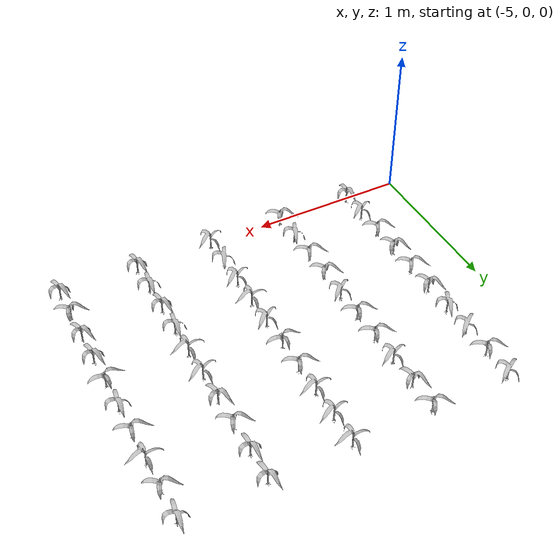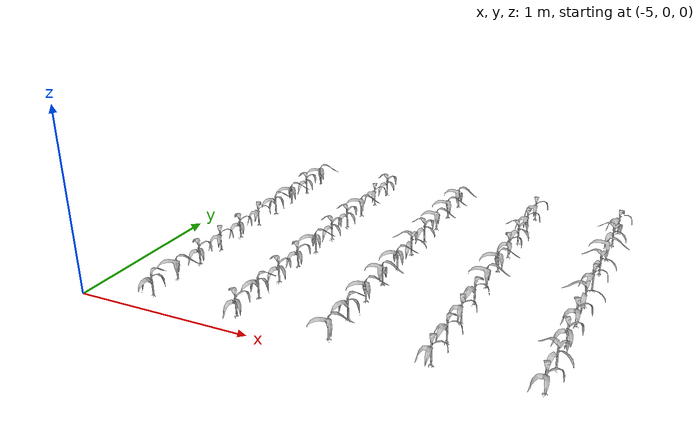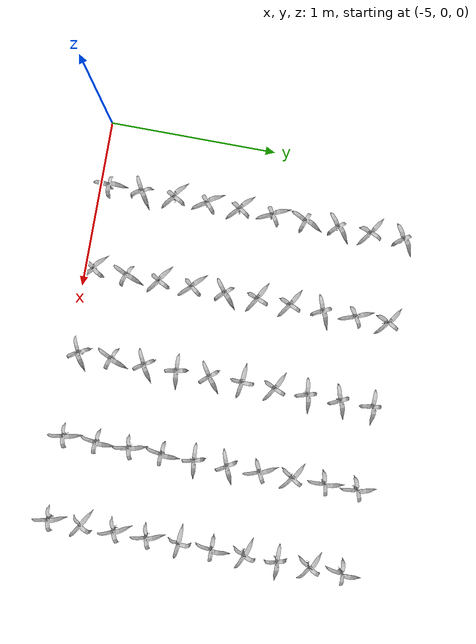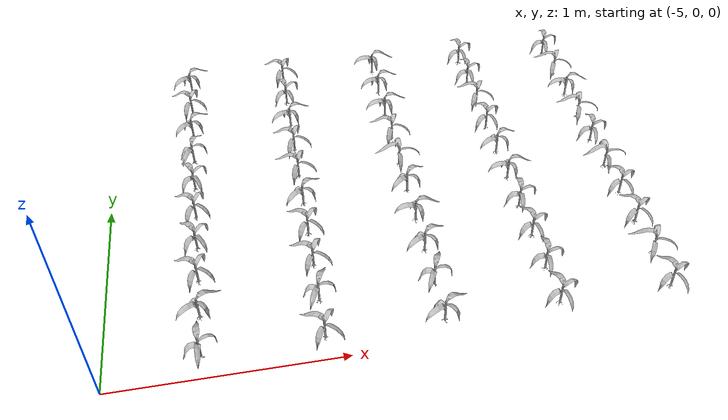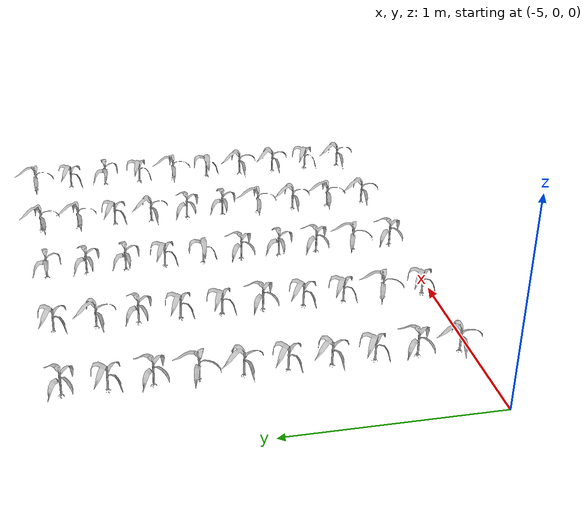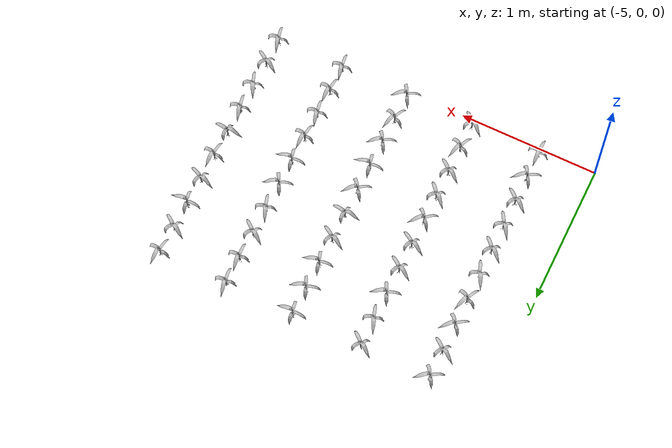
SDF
<sdf version="1.7">
 <world name="default">
  <model name="maize_-4.6_0.07500000000000018">
   <static>1</static>
   <link name="link">
    <inertial>
     <mass>0.2</mass>
     <inertia>
      <ixx>0.166667</ixx>
      <ixy>0</ixy>
      <ixz>0</ixz>
      <iyy>0.166667</iyy>
      <iyz>0</iyz>
      <izz>0.166667</izz>
     </inertia>
    </inertial>
    <collision name="collision">
     <geometry><mesh><uri>model://corn_3/meshes/corn.dae</uri><scale>0.25 0.25 0.25</scale></mesh></geometry>
     <surface>
      <friction><ode><mu>0</mu><mu2>0</mu2></ode></friction>
      <contact><ode><kp>0</kp><kd>0</kd><max_vel>0</max_vel><min_depth>0.002</min_depth></ode></contact>
     </surface>
    </collision>
    <visual name="visual">
     <geometry><mesh><uri>model://corn_3/meshes/corn.dae</uri><scale>0.25 0.25 0.25</scale></mesh></geometry>
    </visual>
    <velocity_decay><linear>0</linear><angular>0</angular></velocity_decay>
   </link>
   <pose>-4.6 0.075 0.05 0 -0 1.63454</pose>
  </model>
  <model name="maize_-4.6_0.27000000000000046">
   <static>1</static>
   <link name="link">
    <inertial>
     <mass>0.2</mass>
     <inertia>
      <ixx>0.166667</ixx>
      <ixy>0</ixy>
      <ixz>0</ixz>
      <iyy>0.166667</iyy>
      <iyz>0</iyz>
      <izz>0.166667</izz>
     </inertia>
    </inertial>
    <collision name="collision">
     <geometry><mesh><uri>model://corn_3/meshes/corn.dae</uri><scale>0.25 0.25 0.25</scale></mesh></geometry>
     <surface>
      <friction><ode><mu>0</mu><mu2>0</mu2></ode></friction>
      <contact><ode><kp>0</kp><kd>0</kd><max_vel>0</max_vel><min_depth>0.002</min_depth></ode></contact>
     </surface>
    </collision>
    <visual name="visual">
     <geometry><mesh><uri>model://corn_3/meshes/corn.dae</uri><scale>0.25 0.25 0.25</scale></mesh></geometry>
    </visual>
    <velocity_decay><linear>0</linear><angular>0</angular></velocity_decay>
   </link>
   <pose>-4.6 0.27 0.05 0 -0 0.584433</pose>
  </model>
  <model name="maize_-4.6_0.46500000000000075">
   <static>1</static>
   <link name="link">
    <inertial>
     <mass>0.2</mass>
     <inertia>
      <ixx>0.166667</ixx>
      <ixy>0</ixy>
      <ixz>0</ixz>
      <iyy>0.166667</iyy>
      <iyz>0</iyz>
      <izz>0.166667</izz>
     </inertia>
    </inertial>
    <collision name="collision">
     <geometry><mesh><uri>model://corn_3/meshes/corn.dae</uri><scale>0.25 0.25 0.25</scale></mesh></geometry>
     <surface>
      <friction><ode><mu>0</mu><mu2>0</mu2></ode></friction>
      <contact><ode><kp>0</kp><kd>0</kd><max_vel>0</max_vel><min_depth>0.002</min_depth></ode></contact>
     </surface>
    </collision>
    <visual name="visual">
     <geometry><mesh><uri>model://corn_3/meshes/corn.dae</uri><scale>0.25 0.25 0.25</scale></mesh></geometry>
    </visual>
    <velocity_decay><linear>0</linear><angular>0</angular></velocity_decay>
   </link>
   <pose>-4.6 0.465 0.05 0 -0 2.54155</pose>
  </model>
  <model name="maize_-4.6_0.6600000000000001">
   <static>1</static>
   <link name="link">
    <inertial>
     <mass>0.2</mass>
     <inertia>
      <ixx>0.166667</ixx>
      <ixy>0</ixy>
      <ixz>0</ixz>
      <iyy>0.166667</iyy>
      <iyz>0</iyz>
      <izz>0.166667</izz>
     </inertia>
    </inertial>
    <collision name="collision">
     <geometry><mesh><uri>model://corn_3/meshes/corn.dae</uri><scale>0.25 0.25 0.25</scale></mesh></geometry>
     <surface>
      <friction><ode><mu>0</mu><mu2>0</mu2></ode></friction>
      <contact><ode><kp>0</kp><kd>0</kd><max_vel>0</max_vel><min_depth>0.002</min_depth></ode></contact>
     </surface>
    </collision>
    <visual name="visual">
     <geometry><mesh><uri>model://corn_3/meshes/corn.dae</uri><scale>0.25 0.25 0.25</scale></mesh></geometry>
    </visual>
    <velocity_decay><linear>0</linear><angular>0</angular></velocity_decay>
   </link>
   <pose>-4.6 0.66 0.05 0 -0 2.1961</pose>
  </model>
  <model name="maize_-4.6_0.8550000000000004">
   <static>1</static>
   <link name="link">
    <inertial>
     <mass>0.2</mass>
     <inertia>
      <ixx>0.166667</ixx>
      <ixy>0</ixy>
      <ixz>0</ixz>
      <iyy>0.166667</iyy>
      <iyz>0</iyz>
      <izz>0.166667</izz>
     </inertia>
    </inertial>
    <collision name="collision">
     <geometry><mesh><uri>model://corn_3/meshes/corn.dae</uri><scale>0.25 0.25 0.25</scale></mesh></geometry>
     <surface>
      <friction><ode><mu>0</mu><mu2>0</mu2></ode></friction>
      <contact><ode><kp>0</kp><kd>0</kd><max_vel>0</max_vel><min_depth>0.002</min_depth></ode></contact>
     </surface>
    </collision>
    <visual name="visual">
     <geometry><mesh><uri>model://corn_3/meshes/corn.dae</uri><scale>0.25 0.25 0.25</scale></mesh></geometry>
    </visual>
    <velocity_decay><linear>0</linear><angular>0</angular></velocity_decay>
   </link>
   <pose>-4.6 0.855 0.05 0 -0 2.45187</pose>
  </model>
  <model name="maize_-4.6_1.0500000000000007">
   <static>1</static>
   <link name="link">
    <inertial>
     <mass>0.2</mass>
     <inertia>
      <ixx>0.166667</ixx>
      <ixy>0</ixy>
      <ixz>0</ixz>
      <iyy>0.166667</iyy>
      <iyz>0</iyz>
      <izz>0.166667</izz>
     </inertia>
    </inertial>
    <collision name="collision">
     <geometry><mesh><uri>model://corn_3/meshes/corn.dae</uri><scale>0.25 0.25 0.25</scale></mesh></geometry>
     <surface>
      <friction><ode><mu>0</mu><mu2>0</mu2></ode></friction>
      <contact><ode><kp>0</kp><kd>0</kd><max_vel>0</max_vel><min_depth>0.002</min_depth></ode></contact>
     </surface>
    </collision>
    <visual name="visual">
     <geometry><mesh><uri>model://corn_3/meshes/corn.dae</uri><scale>0.25 0.25 0.25</scale></mesh></geometry>
    </visual>
    <velocity_decay><linear>0</linear><angular>0</angular></velocity_decay>
   </link>
   <pose>-4.6 1.05 0.05 0 -0 2.05929</pose>
  </model>
  <model name="maize_-4.6_1.245">
   <static>1</static>
   <link name="link">
    <inertial>
     <mass>0.2</mass>
     <inertia>
      <ixx>0.166667</ixx>
      <ixy>0</ixy>
      <ixz>0</ixz>
      <iyy>0.166667</iyy>
      <iyz>0</iyz>
      <izz>0.166667</izz>
     </inertia>
    </inertial>
    <collision name="collision">
     <geometry><mesh><uri>model://corn_3/meshes/corn.dae</uri><scale>0.25 0.25 0.25</scale></mesh></geometry>
     <surface>
      <friction><ode><mu>0</mu><mu2>0</mu2></ode></friction>
      <contact><ode><kp>0</kp><kd>0</kd><max_vel>0</max_vel><min_depth>0.002</min_depth></ode></contact>
     </surface>
    </collision>
    <visual name="visual">
     <geometry><mesh><uri>model://corn_3/meshes/corn.dae</uri><scale>0.25 0.25 0.25</scale></mesh></geometry>
    </visual>
    <velocity_decay><linear>0</linear><angular>0</angular></velocity_decay>
   </link>
   <pose>-4.6 1.245 0.05 0 -0 1.18665</pose>
  </model>
  <model name="maize_-4.6_1.4400000000000004">
   <static>1</static>
   <link name="link">
    <inertial>
     <mass>0.2</mass>
     <inertia>
      <ixx>0.166667</ixx>
      <ixy>0</ixy>
      <ixz>0</ixz>
      <iyy>0.166667</iyy>
      <iyz>0</iyz>
      <izz>0.166667</izz>
     </inertia>
    </inertial>
    <collision name="collision">
     <geometry><mesh><uri>model://corn_3/meshes/corn.dae</uri><scale>0.25 0.25 0.25</scale></mesh></geometry>
     <surface>
      <friction><ode><mu>0</mu><mu2>0</mu2></ode></friction>
      <contact><ode><kp>0</kp><kd>0</kd><max_vel>0</max_vel><min_depth>0.002</min_depth></ode></contact>
     </surface>
    </collision>
    <visual name="visual">
     <geometry><mesh><uri>model://corn_3/meshes/corn.dae</uri><scale>0.25 0.25 0.25</scale></mesh></geometry>
    </visual>
    <velocity_decay><linear>0</linear><angular>0</angular></velocity_decay>
   </link>
   <pose>-4.6 1.44 0.05 0 -0 0.7282</pose>
  </model>
  <model name="maize_-4.6_1.6350000000000007">
   <static>1</static>
   <link name="link">
    <inertial>
     <mass>0.2</mass>
     <inertia>
      <ixx>0.166667</ixx>
      <ixy>0</ixy>
      <ixz>0</ixz>
      <iyy>0.166667</iyy>
      <iyz>0</iyz>
      <izz>0.166667</izz>
     </inertia>
    </inertial>
    <collision name="collision">
     <geometry><mesh><uri>model://corn_3/meshes/corn.dae</uri><scale>0.25 0.25 0.25</scale></mesh></geometry>
     <surface>
      <friction><ode><mu>0</mu><mu2>0</mu2></ode></friction>
      <contact><ode><kp>0</kp><kd>0</kd><max_vel>0</max_vel><min_depth>0.002</min_depth></ode></contact>
     </surface>
    </collision>
    <visual name="visual">
     <geometry><mesh><uri>model://corn_3/meshes/corn.dae</uri><scale>0.25 0.25 0.25</scale></mesh></geometry>
    </visual>
    <velocity_decay><linear>0</linear><angular>0</angular></velocity_decay>
   </link>
   <pose>-4.6 1.635 0.05 0 -0 2.59609</pose>
  </model>
  <model name="maize_-4.6_1.83">
   <static>1</static>
   <link name="link">
    <inertial>
     <mass>0.2</mass>
     <inertia>
      <ixx>0.166667</ixx>
      <ixy>0</ixy>
      <ixz>0</ixz>
      <iyy>0.166667</iyy>
      <iyz>0</iyz>
      <izz>0.166667</izz>
     </inertia>
    </inertial>
    <collision name="collision">
     <geometry><mesh><uri>model://corn_3/meshes/corn.dae</uri><scale>0.25 0.25 0.25</scale></mesh></geometry>
     <surface>
      <friction><ode><mu>0</mu><mu2>0</mu2></ode></friction>
      <contact><ode><kp>0</kp><kd>0</kd><max_vel>0</max_vel><min_depth>0.002</min_depth></ode></contact>
     </surface>
    </collision>
    <visual name="visual">
     <geometry><mesh><uri>model://corn_3/meshes/corn.dae</uri><scale>0.25 0.25 0.25</scale></mesh></geometry>
    </visual>
    <velocity_decay><linear>0</linear><angular>0</angular></velocity_decay>
   </link>
   <pose>-4.6 1.83 0.05 0 -0 0.608811</pose>
  </model>
  <model name="maize_-4.100375_0.07500000000000018">
   <static>1</static>
   <link name="link">
    <inertial>
     <mass>0.2</mass>
     <inertia>
      <ixx>0.166667</ixx>
      <ixy>0</ixy>
      <ixz>0</ixz>
      <iyy>0.166667</iyy>
      <iyz>0</iyz>
      <izz>0.166667</izz>
     </inertia>
    </inertial>
    <collision name="collision">
     <geometry><mesh><uri>model://corn_3/meshes/corn.dae</uri><scale>0.25 0.25 0.25</scale></mesh></geometry>
     <surface>
      <friction><ode><mu>0</mu><mu2>0</mu2></ode></friction>
      <contact><ode><kp>0</kp><kd>0</kd><max_vel>0</max_vel><min_depth>0.002</min_depth></ode></contact>
     </surface>
    </collision>
    <visual name="visual">
     <geometry><mesh><uri>model://corn_3/meshes/corn.dae</uri><scale>0.25 0.25 0.25</scale></mesh></geometry>
    </visual>
    <velocity_decay><linear>0</linear><angular>0</angular></velocity_decay>
   </link>
   <pose>-4.10037 0.075 0.05 0 -0 2.49633</pose>
  </model>
  <model name="maize_-4.100375_0.27000000000000046">
   <static>1</static>
   <link name="link">
    <inertial>
     <mass>0.2</mass>
     <inertia>
      <ixx>0.166667</ixx>
      <ixy>0</ixy>
      <ixz>0</ixz>
      <iyy>0.166667</iyy>
      <iyz>0</iyz>
      <izz>0.166667</izz>
     </inertia>
    </inertial>
    <collision name="collision">
     <geometry><mesh><uri>model://corn_3/meshes/corn.dae</uri><scale>0.25 0.25 0.25</scale></mesh></geometry>
     <surface>
      <friction><ode><mu>0</mu><mu2>0</mu2></ode></friction>
      <contact><ode><kp>0</kp><kd>0</kd><max_vel>0</max_vel><min_depth>0.002</min_depth></ode></contact>
     </surface>
    </collision>
    <visual name="visual">
     <geometry><mesh><uri>model://corn_3/meshes/corn.dae</uri><scale>0.25 0.25 0.25</scale></mesh></geometry>
    </visual>
    <velocity_decay><linear>0</linear><angular>0</angular></velocity_decay>
   </link>
   <pose>-4.10037 0.27 0.05 0 -0 1.22252</pose>
  </model>
  <model name="maize_-4.100375_0.46500000000000075">
   <static>1</static>
   <link name="link">
    <inertial>
     <mass>0.2</mass>
     <inertia>
      <ixx>0.166667</ixx>
      <ixy>0</ixy>
      <ixz>0</ixz>
      <iyy>0.166667</iyy>
      <iyz>0</iyz>
      <izz>0.166667</izz>
     </inertia>
    </inertial>
    <collision name="collision">
     <geometry><mesh><uri>model://corn_3/meshes/corn.dae</uri><scale>0.25 0.25 0.25</scale></mesh></geometry>
     <surface>
      <friction><ode><mu>0</mu><mu2>0</mu2></ode></friction>
      <contact><ode><kp>0</kp><kd>0</kd><max_vel>0</max_vel><min_depth>0.002</min_depth></ode></contact>
     </surface>
    </collision>
    <visual name="visual">
     <geometry><mesh><uri>model://corn_3/meshes/corn.dae</uri><scale>0.25 0.25 0.25</scale></mesh></geometry>
    </visual>
    <velocity_decay><linear>0</linear><angular>0</angular></velocity_decay>
   </link>
   <pose>-4.10037 0.465 0.05 0 -0 2.57304</pose>
  </model>
  <model name="maize_-4.100375_0.6600000000000001">
   <static>1</static>
   <link name="link">
    <inertial>
     <mass>0.2</mass>
     <inertia>
      <ixx>0.166667</ixx>
      <ixy>0</ixy>
      <ixz>0</ixz>
      <iyy>0.166667</iyy>
      <iyz>0</iyz>
      <izz>0.166667</izz>
     </inertia>
    </inertial>
    <collision name="collision">
     <geometry><mesh><uri>model://corn_3/meshes/corn.dae</uri><scale>0.25 0.25 0.25</scale></mesh></geometry>
     <surface>
      <friction><ode><mu>0</mu><mu2>0</mu2></ode></friction>
      <contact><ode><kp>0</kp><kd>0</kd><max_vel>0</max_vel><min_depth>0.002</min_depth></ode></contact>
     </surface>
    </collision>
    <visual name="visual">
     <geometry><mesh><uri>model://corn_3/meshes/corn.dae</uri><scale>0.25 0.25 0.25</scale></mesh></geometry>
    </visual>
    <velocity_decay><linear>0</linear><angular>0</angular></velocity_decay>
   </link>
   <pose>-4.10037 0.66 0.05 0 -0 2.40068</pose>
  </model>
  <model name="maize_-4.100375_0.8550000000000004">
   <static>1</static>
   <link name="link">
    <inertial>
     <mass>0.2</mass>
     <inertia>
      <ixx>0.166667</ixx>
      <ixy>0</ixy>
      <ixz>0</ixz>
      <iyy>0.166667</iyy>
      <iyz>0</iyz>
      <izz>0.166667</izz>
     </inertia>
    </inertial>
    <collision name="collision">
     <geometry><mesh><uri>model://corn_3/meshes/corn.dae</uri><scale>0.25 0.25 0.25</scale></mesh></geometry>
     <surface>
      <friction><ode><mu>0</mu><mu2>0</mu2></ode></friction>
      <contact><ode><kp>0</kp><kd>0</kd><max_vel>0</max_vel><min_depth>0.002</min_depth></ode></contact>
     </surface>
    </collision>
    <visual name="visual">
     <geometry><mesh><uri>model://corn_3/meshes/corn.dae</uri><scale>0.25 0.25 0.25</scale></mesh></geometry>
    </visual>
    <velocity_decay><linear>0</linear><angular>0</angular></velocity_decay>
   </link>
   <pose>-4.10037 0.855 0.05 0 -0 0.740483</pose>
  </model>
  <model name="maize_-4.100375_1.0500000000000007">
   <static>1</static>
   <link name="link">
    <inertial>
     <mass>0.2</mass>
     <inertia>
      <ixx>0.166667</ixx>
      <ixy>0</ixy>
      <ixz>0</ixz>
      <iyy>0.166667</iyy>
      <iyz>0</iyz>
      <izz>0.166667</izz>
     </inertia>
    </inertial>
    <collision name="collision">
     <geometry><mesh><uri>model://corn_3/meshes/corn.dae</uri><scale>0.25 0.25 0.25</scale></mesh></geometry>
     <surface>
      <friction><ode><mu>0</mu><mu2>0</mu2></ode></friction>
      <contact><ode><kp>0</kp><kd>0</kd><max_vel>0</max_vel><min_depth>0.002</min_depth></ode></contact>
     </surface>
    </collision>
    <visual name="visual">
     <geometry><mesh><uri>model://corn_3/meshes/corn.dae</uri><scale>0.25 0.25 0.25</scale></mesh></geometry>
    </visual>
    <velocity_decay><linear>0</linear><angular>0</angular></velocity_decay>
   </link>
   <pose>-4.10037 1.05 0.05 0 -0 2.689</pose>
  </model>
  <model name="maize_-4.100375_1.245">
   <static>1</static>
   <link name="link">
    <inertial>
     <mass>0.2</mass>
     <inertia>
      <ixx>0.166667</ixx>
      <ixy>0</ixy>
      <ixz>0</ixz>
      <iyy>0.166667</iyy>
      <iyz>0</iyz>
      <izz>0.166667</izz>
     </inertia>
    </inertial>
    <collision name="collision">
     <geometry><mesh><uri>model://corn_3/meshes/corn.dae</uri><scale>0.25 0.25 0.25</scale></mesh></geometry>
     <surface>
      <friction><ode><mu>0</mu><mu2>0</mu2></ode></friction>
      <contact><ode><kp>0</kp><kd>0</kd><max_vel>0</max_vel><min_depth>0.002</min_depth></ode></contact>
     </surface>
    </collision>
    <visual name="visual">
     <geometry><mesh><uri>model://corn_3/meshes/corn.dae</uri><scale>0.25 0.25 0.25</scale></mesh></geometry>
    </visual>
    <velocity_decay><linear>0</linear><angular>0</angular></velocity_decay>
   </link>
   <pose>-4.10037 1.245 0.05 0 -0 2.64022</pose>
  </model>
  <model name="maize_-4.100375_1.4400000000000004">
   <static>1</static>
   <link name="link">
    <inertial>
     <mass>0.2</mass>
     <inertia>
      <ixx>0.166667</ixx>
      <ixy>0</ixy>
      <ixz>0</ixz>
      <iyy>0.166667</iyy>
      <iyz>0</iyz>
      <izz>0.166667</izz>
     </inertia>
    </inertial>
    <collision name="collision">
     <geometry><mesh><uri>model://corn_3/meshes/corn.dae</uri><scale>0.25 0.25 0.25</scale></mesh></geometry>
     <surface>
      <friction><ode><mu>0</mu><mu2>0</mu2></ode></friction>
      <contact><ode><kp>0</kp><kd>0</kd><max_vel>0</max_vel><min_depth>0.002</min_depth></ode></contact>
     </surface>
    </collision>
    <visual name="visual">
     <geometry><mesh><uri>model://corn_3/meshes/corn.dae</uri><scale>0.25 0.25 0.25</scale></mesh></geometry>
    </visual>
    <velocity_decay><linear>0</linear><angular>0</angular></velocity_decay>
   </link>
   <pose>-4.10037 1.44 0.05 0 -0 0.435595</pose>
  </model>
  <model name="maize_-4.100375_1.6350000000000007">
   <static>1</static>
   <link name="link">
    <inertial>
     <mass>0.2</mass>
     <inertia>
      <ixx>0.166667</ixx>
      <ixy>0</ixy>
      <ixz>0</ixz>
      <iyy>0.166667</iyy>
      <iyz>0</iyz>
      <izz>0.166667</izz>
     </inertia>
    </inertial>
    <collision name="collision">
     <geometry><mesh><uri>model://corn_3/meshes/corn.dae</uri><scale>0.25 0.25 0.25</scale></mesh></geometry>
     <surface>
      <friction><ode><mu>0</mu><mu2>0</mu2></ode></friction>
      <contact><ode><kp>0</kp><kd>0</kd><max_vel>0</max_vel><min_depth>0.002</min_depth></ode></contact>
     </surface>
    </collision>
    <visual name="visual">
     <geometry><mesh><uri>model://corn_3/meshes/corn.dae</uri><scale>0.25 0.25 0.25</scale></mesh></geometry>
    </visual>
    <velocity_decay><linear>0</linear><angular>0</angular></velocity_decay>
   </link>
   <pose>-4.10037 1.635 0.05 0 -0 1.98601</pose>
  </model>
  <model name="maize_-4.100375_1.83">
   <static>1</static>
   <link name="link">
    <inertial>
     <mass>0.2</mass>
     <inertia>
      <ixx>0.166667</ixx>
      <ixy>0</ixy>
      <ixz>0</ixz>
      <iyy>0.166667</iyy>
      <iyz>0</iyz>
      <izz>0.166667</izz>
     </inertia>
    </inertial>
    <collision name="collision">
     <geometry><mesh><uri>model://corn_3/meshes/corn.dae</uri><scale>0.25 0.25 0.25</scale></mesh></geometry>
     <surface>
      <friction><ode><mu>0</mu><mu2>0</mu2></ode></friction>
      <contact><ode><kp>0</kp><kd>0</kd><max_vel>0</max_vel><min_depth>0.002</min_depth></ode></contact>
     </surface>
    </collision>
    <visual name="visual">
     <geometry><mesh><uri>model://corn_3/meshes/corn.dae</uri><scale>0.25 0.25 0.25</scale></mesh></geometry>
    </visual>
    <velocity_decay><linear>0</linear><angular>0</angular></velocity_decay>
   </link>
   <pose>-4.10037 1.83 0.05 0 -0 2.55709</pose>
  </model>
  <model name="maize_-3.6014994375_0.07500000000000018">
   <static>1</static>
   <link name="link">
    <inertial>
     <mass>0.2</mass>
     <inertia>
      <ixx>0.166667</ixx>
      <ixy>0</ixy>
      <ixz>0</ixz>
      <iyy>0.166667</iyy>
      <iyz>0</iyz>
      <izz>0.166667</izz>
     </inertia>
    </inertial>
    <collision name="collision">
     <geometry><mesh><uri>model://corn_3/meshes/corn.dae</uri><scale>0.25 0.25 0.25</scale></mesh></geometry>
     <surface>
      <friction><ode><mu>0</mu><mu2>0</mu2></ode></friction>
      <contact><ode><kp>0</kp><kd>0</kd><max_vel>0</max_vel><min_depth>0.002</min_depth></ode></contact>
     </surface>
    </collision>
    <visual name="visual">
     <geometry><mesh><uri>model://corn_3/meshes/corn.dae</uri><scale>0.25 0.25 0.25</scale></mesh></geometry>
    </visual>
    <velocity_decay><linear>0</linear><angular>0</angular></velocity_decay>
   </link>
   <pose>-3.6015 0.075 0.05 0 -0 0.527159</pose>
  </model>
  <model name="maize_-3.6014994375_0.27000000000000046">
   <static>1</static>
   <link name="link">
    <inertial>
     <mass>0.2</mass>
     <inertia>
      <ixx>0.166667</ixx>
      <ixy>0</ixy>
      <ixz>0</ixz>
      <iyy>0.166667</iyy>
      <iyz>0</iyz>
      <izz>0.166667</izz>
     </inertia>
    </inertial>
    <collision name="collision">
     <geometry><mesh><uri>model://corn_3/meshes/corn.dae</uri><scale>0.25 0.25 0.25</scale></mesh></geometry>
     <surface>
      <friction><ode><mu>0</mu><mu2>0</mu2></ode></friction>
      <contact><ode><kp>0</kp><kd>0</kd><max_vel>0</max_vel><min_depth>0.002</min_depth></ode></contact>
     </surface>
    </collision>
    <visual name="visual">
     <geometry><mesh><uri>model://corn_3/meshes/corn.dae</uri><scale>0.25 0.25 0.25</scale></mesh></geometry>
    </visual>
    <velocity_decay><linear>0</linear><angular>0</angular></velocity_decay>
   </link>
   <pose>-3.6015 0.27 0.05 0 -0 1.20846</pose>
  </model>
  <model name="maize_-3.6014994375_0.46500000000000075">
   <static>1</static>
   <link name="link">
    <inertial>
     <mass>0.2</mass>
     <inertia>
      <ixx>0.166667</ixx>
      <ixy>0</ixy>
      <ixz>0</ixz>
      <iyy>0.166667</iyy>
      <iyz>0</iyz>
      <izz>0.166667</izz>
     </inertia>
    </inertial>
    <collision name="collision">
     <geometry><mesh><uri>model://corn_3/meshes/corn.dae</uri><scale>0.25 0.25 0.25</scale></mesh></geometry>
     <surface>
      <friction><ode><mu>0</mu><mu2>0</mu2></ode></friction>
      <contact><ode><kp>0</kp><kd>0</kd><max_vel>0</max_vel><min_depth>0.002</min_depth></ode></contact>
     </surface>
    </collision>
    <visual name="visual">
     <geometry><mesh><uri>model://corn_3/meshes/corn.dae</uri><scale>0.25 0.25 0.25</scale></mesh></geometry>
    </visual>
    <velocity_decay><linear>0</linear><angular>0</angular></velocity_decay>
   </link>
   <pose>-3.6015 0.465 0.05 0 -0 0.562292</pose>
  </model>
  <model name="maize_-3.6014994375_0.6600000000000001">
   <static>1</static>
   <link name="link">
    <inertial>
     <mass>0.2</mass>
     <inertia>
      <ixx>0.166667</ixx>
      <ixy>0</ixy>
      <ixz>0</ixz>
      <iyy>0.166667</iyy>
      <iyz>0</iyz>
      <izz>0.166667</izz>
     </inertia>
    </inertial>
    <collision name="collision">
     <geometry><mesh><uri>model://corn_3/meshes/corn.dae</uri><scale>0.25 0.25 0.25</scale></mesh></geometry>
     <surface>
      <friction><ode><mu>0</mu><mu2>0</mu2></ode></friction>
      <contact><ode><kp>0</kp><kd>0</kd><max_vel>0</max_vel><min_depth>0.002</min_depth></ode></contact>
     </surface>
    </collision>
    <visual name="visual">
     <geometry><mesh><uri>model://corn_3/meshes/corn.dae</uri><scale>0.25 0.25 0.25</scale></mesh></geometry>
    </visual>
    <velocity_decay><linear>0</linear><angular>0</angular></velocity_decay>
   </link>
   <pose>-3.6015 0.66 0.05 0 -0 0.141655</pose>
  </model>
  <model name="maize_-3.6014994375_0.8550000000000004">
   <static>1</static>
   <link name="link">
    <inertial>
     <mass>0.2</mass>
     <inertia>
      <ixx>0.166667</ixx>
      <ixy>0</ixy>
      <ixz>0</ixz>
      <iyy>0.166667</iyy>
      <iyz>0</iyz>
      <izz>0.166667</izz>
     </inertia>
    </inertial>
    <collision name="collision">
     <geometry><mesh><uri>model://corn_3/meshes/corn.dae</uri><scale>0.25 0.25 0.25</scale></mesh></geometry>
     <surface>
      <friction><ode><mu>0</mu><mu2>0</mu2></ode></friction>
      <contact><ode><kp>0</kp><kd>0</kd><max_vel>0</max_vel><min_depth>0.002</min_depth></ode></contact>
     </surface>
    </collision>
    <visual name="visual">
     <geometry><mesh><uri>model://corn_3/meshes/corn.dae</uri><scale>0.25 0.25 0.25</scale></mesh></geometry>
    </visual>
    <velocity_decay><linear>0</linear><angular>0</angular></velocity_decay>
   </link>
   <pose>-3.6015 0.855 0.05 0 -0 0.6742</pose>
  </model>
  <model name="maize_-3.6014994375_1.0500000000000007">
   <static>1</static>
   <link name="link">
    <inertial>
     <mass>0.2</mass>
     <inertia>
      <ixx>0.166667</ixx>
      <ixy>0</ixy>
      <ixz>0</ixz>
      <iyy>0.166667</iyy>
      <iyz>0</iyz>
      <izz>0.166667</izz>
     </inertia>
    </inertial>
    <collision name="collision">
     <geometry><mesh><uri>model://corn_3/meshes/corn.dae</uri><scale>0.25 0.25 0.25</scale></mesh></geometry>
     <surface>
      <friction><ode><mu>0</mu><mu2>0</mu2></ode></friction>
      <contact><ode><kp>0</kp><kd>0</kd><max_vel>0</max_vel><min_depth>0.002</min_depth></ode></contact>
     </surface>
    </collision>
    <visual name="visual">
     <geometry><mesh><uri>model://corn_3/meshes/corn.dae</uri><scale>0.25 0.25 0.25</scale></mesh></geometry>
    </visual>
    <velocity_decay><linear>0</linear><angular>0</angular></velocity_decay>
   </link>
   <pose>-3.6015 1.05 0.05 0 -0 3.08693</pose>
  </model>
  <model name="maize_-3.6014994375_1.245">
   <static>1</static>
   <link name="link">
    <inertial>
     <mass>0.2</mass>
     <inertia>
      <ixx>0.166667</ixx>
      <ixy>0</ixy>
      <ixz>0</ixz>
      <iyy>0.166667</iyy>
      <iyz>0</iyz>
      <izz>0.166667</izz>
     </inertia>
    </inertial>
    <collision name="collision">
     <geometry><mesh><uri>model://corn_3/meshes/corn.dae</uri><scale>0.25 0.25 0.25</scale></mesh></geometry>
     <surface>
      <friction><ode><mu>0</mu><mu2>0</mu2></ode></friction>
      <contact><ode><kp>0</kp><kd>0</kd><max_vel>0</max_vel><min_depth>0.002</min_depth></ode></contact>
     </surface>
    </collision>
    <visual name="visual">
     <geometry><mesh><uri>model://corn_3/meshes/corn.dae</uri><scale>0.25 0.25 0.25</scale></mesh></geometry>
    </visual>
    <velocity_decay><linear>0</linear><angular>0</angular></velocity_decay>
   </link>
   <pose>-3.6015 1.245 0.05 0 -0 2.68727</pose>
  </model>
  <model name="maize_-3.6014994375_1.4400000000000004">
   <static>1</static>
   <link name="link">
    <inertial>
     <mass>0.2</mass>
     <inertia>
      <ixx>0.166667</ixx>
      <ixy>0</ixy>
      <ixz>0</ixz>
      <iyy>0.166667</iyy>
      <iyz>0</iyz>
      <izz>0.166667</izz>
     </inertia>
    </inertial>
    <collision name="collision">
     <geometry><mesh><uri>model://corn_3/meshes/corn.dae</uri><scale>0.25 0.25 0.25</scale></mesh></geometry>
     <surface>
      <friction><ode><mu>0</mu><mu2>0</mu2></ode></friction>
      <contact><ode><kp>0</kp><kd>0</kd><max_vel>0</max_vel><min_depth>0.002</min_depth></ode></contact>
     </surface>
    </collision>
    <visual name="visual">
     <geometry><mesh><uri>model://corn_3/meshes/corn.dae</uri><scale>0.25 0.25 0.25</scale></mesh></geometry>
    </visual>
    <velocity_decay><linear>0</linear><angular>0</angular></velocity_decay>
   </link>
   <pose>-3.6015 1.44 0.05 0 -0 0.218638</pose>
  </model>
  <model name="maize_-3.6014994375_1.6350000000000007">
   <static>1</static>
   <link name="link">
    <inertial>
     <mass>0.2</mass>
     <inertia>
      <ixx>0.166667</ixx>
      <ixy>0</ixy>
      <ixz>0</ixz>
      <iyy>0.166667</iyy>
      <iyz>0</iyz>
      <izz>0.166667</izz>
     </inertia>
    </inertial>
    <collision name="collision">
     <geometry><mesh><uri>model://corn_3/meshes/corn.dae</uri><scale>0.25 0.25 0.25</scale></mesh></geometry>
     <surface>
      <friction><ode><mu>0</mu><mu2>0</mu2></ode></friction>
      <contact><ode><kp>0</kp><kd>0</kd><max_vel>0</max_vel><min_depth>0.002</min_depth></ode></contact>
     </surface>
    </collision>
    <visual name="visual">
     <geometry><mesh><uri>model://corn_3/meshes/corn.dae</uri><scale>0.25 0.25 0.25</scale></mesh></geometry>
    </visual>
    <velocity_decay><linear>0</linear><angular>0</angular></velocity_decay>
   </link>
   <pose>-3.6015 1.635 0.05 0 -0 0.364805</pose>
  </model>
  <model name="maize_-3.6014994375_1.83">
   <static>1</static>
   <link name="link">
    <inertial>
     <mass>0.2</mass>
     <inertia>
      <ixx>0.166667</ixx>
      <ixy>0</ixy>
      <ixz>0</ixz>
      <iyy>0.166667</iyy>
      <iyz>0</iyz>
      <izz>0.166667</izz>
     </inertia>
    </inertial>
    <collision name="collision">
     <geometry><mesh><uri>model://corn_3/meshes/corn.dae</uri><scale>0.25 0.25 0.25</scale></mesh></geometry>
     <surface>
      <friction><ode><mu>0</mu><mu2>0</mu2></ode></friction>
      <contact><ode><kp>0</kp><kd>0</kd><max_vel>0</max_vel><min_depth>0.002</min_depth></ode></contact>
     </surface>
    </collision>
    <visual name="visual">
     <geometry><mesh><uri>model://corn_3/meshes/corn.dae</uri><scale>0.25 0.25 0.25</scale></mesh></geometry>
    </visual>
    <velocity_decay><linear>0</linear><angular>0</angular></velocity_decay>
   </link>
   <pose>-3.6015 1.83 0.05 0 -0 0.072166</pose>
  </model>
  <model name="maize_-3.1033724693828124_0.07500000000000018">
   <static>1</static>
   <link name="link">
    <inertial>
     <mass>0.2</mass>
     <inertia>
      <ixx>0.166667</ixx>
      <ixy>0</ixy>
      <ixz>0</ixz>
      <iyy>0.166667</iyy>
      <iyz>0</iyz>
      <izz>0.166667</izz>
     </inertia>
    </inertial>
    <collision name="collision">
     <geometry><mesh><uri>model://corn_3/meshes/corn.dae</uri><scale>0.25 0.25 0.25</scale></mesh></geometry>
     <surface>
      <friction><ode><mu>0</mu><mu2>0</mu2></ode></friction>
      <contact><ode><kp>0</kp><kd>0</kd><max_vel>0</max_vel><min_depth>0.002</min_depth></ode></contact>
     </surface>
    </collision>
    <visual name="visual">
     <geometry><mesh><uri>model://corn_3/meshes/corn.dae</uri><scale>0.25 0.25 0.25</scale></mesh></geometry>
    </visual>
    <velocity_decay><linear>0</linear><angular>0</angular></velocity_decay>
   </link>
   <pose>-3.10337 0.075 0.05 0 -0 1.80474</pose>
  </model>
  <model name="maize_-3.1033724693828124_0.27000000000000046">
   <static>1</static>
   <link name="link">
    <inertial>
     <mass>0.2</mass>
     <inertia>
      <ixx>0.166667</ixx>
      <ixy>0</ixy>
      <ixz>0</ixz>
      <iyy>0.166667</iyy>
      <iyz>0</iyz>
      <izz>0.166667</izz>
     </inertia>
    </inertial>
    <collision name="collision">
     <geometry><mesh><uri>model://corn_3/meshes/corn.dae</uri><scale>0.25 0.25 0.25</scale></mesh></geometry>
     <surface>
      <friction><ode><mu>0</mu><mu2>0</mu2></ode></friction>
      <contact><ode><kp>0</kp><kd>0</kd><max_vel>0</max_vel><min_depth>0.002</min_depth></ode></contact>
     </surface>
    </collision>
    <visual name="visual">
     <geometry><mesh><uri>model://corn_3/meshes/corn.dae</uri><scale>0.25 0.25 0.25</scale></mesh></geometry>
    </visual>
    <velocity_decay><linear>0</linear><angular>0</angular></velocity_decay>
   </link>
   <pose>-3.10337 0.27 0.05 0 -0 1.52818</pose>
  </model>
  <model name="maize_-3.1033724693828124_0.46500000000000075">
   <static>1</static>
   <link name="link">
    <inertial>
     <mass>0.2</mass>
     <inertia>
      <ixx>0.166667</ixx>
      <ixy>0</ixy>
      <ixz>0</ixz>
      <iyy>0.166667</iyy>
      <iyz>0</iyz>
      <izz>0.166667</izz>
     </inertia>
    </inertial>
    <collision name="collision">
     <geometry><mesh><uri>model://corn_3/meshes/corn.dae</uri><scale>0.25 0.25 0.25</scale></mesh></geometry>
     <surface>
      <friction><ode><mu>0</mu><mu2>0</mu2></ode></friction>
      <contact><ode><kp>0</kp><kd>0</kd><max_vel>0</max_vel><min_depth>0.002</min_depth></ode></contact>
     </surface>
    </collision>
    <visual name="visual">
     <geometry><mesh><uri>model://corn_3/meshes/corn.dae</uri><scale>0.25 0.25 0.25</scale></mesh></geometry>
    </visual>
    <velocity_decay><linear>0</linear><angular>0</angular></velocity_decay>
   </link>
   <pose>-3.10337 0.465 0.05 0 -0 1.83646</pose>
  </model>
  <model name="maize_-3.1033724693828124_0.6600000000000001">
   <static>1</static>
   <link name="link">
    <inertial>
     <mass>0.2</mass>
     <inertia>
      <ixx>0.166667</ixx>
      <ixy>0</ixy>
      <ixz>0</ixz>
      <iyy>0.166667</iyy>
      <iyz>0</iyz>
      <izz>0.166667</izz>
     </inertia>
    </inertial>
    <collision name="collision">
     <geometry><mesh><uri>model://corn_3/meshes/corn.dae</uri><scale>0.25 0.25 0.25</scale></mesh></geometry>
     <surface>
      <friction><ode><mu>0</mu><mu2>0</mu2></ode></friction>
      <contact><ode><kp>0</kp><kd>0</kd><max_vel>0</max_vel><min_depth>0.002</min_depth></ode></contact>
     </surface>
    </collision>
    <visual name="visual">
     <geometry><mesh><uri>model://corn_3/meshes/corn.dae</uri><scale>0.25 0.25 0.25</scale></mesh></geometry>
    </visual>
    <velocity_decay><linear>0</linear><angular>0</angular></velocity_decay>
   </link>
   <pose>-3.10337 0.66 0.05 0 -0 1.5042</pose>
  </model>
  <model name="maize_-3.1033724693828124_0.8550000000000004">
   <static>1</static>
   <link name="link">
    <inertial>
     <mass>0.2</mass>
     <inertia>
      <ixx>0.166667</ixx>
      <ixy>0</ixy>
      <ixz>0</ixz>
      <iyy>0.166667</iyy>
      <iyz>0</iyz>
      <izz>0.166667</izz>
     </inertia>
    </inertial>
    <collision name="collision">
     <geometry><mesh><uri>model://corn_3/meshes/corn.dae</uri><scale>0.25 0.25 0.25</scale></mesh></geometry>
     <surface>
      <friction><ode><mu>0</mu><mu2>0</mu2></ode></friction>
      <contact><ode><kp>0</kp><kd>0</kd><max_vel>0</max_vel><min_depth>0.002</min_depth></ode></contact>
     </surface>
    </collision>
    <visual name="visual">
     <geometry><mesh><uri>model://corn_3/meshes/corn.dae</uri><scale>0.25 0.25 0.25</scale></mesh></geometry>
    </visual>
    <velocity_decay><linear>0</linear><angular>0</angular></velocity_decay>
   </link>
   <pose>-3.10337 0.855 0.05 0 -0 0.149154</pose>
  </model>
  <model name="maize_-3.1033724693828124_1.0500000000000007">
   <static>1</static>
   <link name="link">
    <inertial>
     <mass>0.2</mass>
     <inertia>
      <ixx>0.166667</ixx>
      <ixy>0</ixy>
      <ixz>0</ixz>
      <iyy>0.166667</iyy>
      <iyz>0</iyz>
      <izz>0.166667</izz>
     </inertia>
    </inertial>
    <collision name="collision">
     <geometry><mesh><uri>model://corn_3/meshes/corn.dae</uri><scale>0.25 0.25 0.25</scale></mesh></geometry>
     <surface>
      <friction><ode><mu>0</mu><mu2>0</mu2></ode></friction>
      <contact><ode><kp>0</kp><kd>0</kd><max_vel>0</max_vel><min_depth>0.002</min_depth></ode></contact>
     </surface>
    </collision>
    <visual name="visual">
     <geometry><mesh><uri>model://corn_3/meshes/corn.dae</uri><scale>0.25 0.25 0.25</scale></mesh></geometry>
    </visual>
    <velocity_decay><linear>0</linear><angular>0</angular></velocity_decay>
   </link>
   <pose>-3.10337 1.05 0.05 0 -0 0.444015</pose>
  </model>
  <model name="maize_-3.1033724693828124_1.245">
   <static>1</static>
   <link name="link">
    <inertial>
     <mass>0.2</mass>
     <inertia>
      <ixx>0.166667</ixx>
      <ixy>0</ixy>
      <ixz>0</ixz>
      <iyy>0.166667</iyy>
      <iyz>0</iyz>
      <izz>0.166667</izz>
     </inertia>
    </inertial>
    <collision name="collision">
     <geometry><mesh><uri>model://corn_3/meshes/corn.dae</uri><scale>0.25 0.25 0.25</scale></mesh></geometry>
     <surface>
      <friction><ode><mu>0</mu><mu2>0</mu2></ode></friction>
      <contact><ode><kp>0</kp><kd>0</kd><max_vel>0</max_vel><min_depth>0.002</min_depth></ode></contact>
     </surface>
    </collision>
    <visual name="visual">
     <geometry><mesh><uri>model://corn_3/meshes/corn.dae</uri><scale>0.25 0.25 0.25</scale></mesh></geometry>
    </visual>
    <velocity_decay><linear>0</linear><angular>0</angular></velocity_decay>
   </link>
   <pose>-3.10337 1.245 0.05 0 -0 1.99453</pose>
  </model>
  <model name="maize_-3.1033724693828124_1.4400000000000004">
   <static>1</static>
   <link name="link">
    <inertial>
     <mass>0.2</mass>
     <inertia>
      <ixx>0.166667</ixx>
      <ixy>0</ixy>
      <ixz>0</ixz>
      <iyy>0.166667</iyy>
      <iyz>0</iyz>
      <izz>0.166667</izz>
     </inertia>
    </inertial>
    <collision name="collision">
     <geometry><mesh><uri>model://corn_3/meshes/corn.dae</uri><scale>0.25 0.25 0.25</scale></mesh></geometry>
     <surface>
      <friction><ode><mu>0</mu><mu2>0</mu2></ode></friction>
      <contact><ode><kp>0</kp><kd>0</kd><max_vel>0</max_vel><min_depth>0.002</min_depth></ode></contact>
     </surface>
    </collision>
    <visual name="visual">
     <geometry><mesh><uri>model://corn_3/meshes/corn.dae</uri><scale>0.25 0.25 0.25</scale></mesh></geometry>
    </visual>
    <velocity_decay><linear>0</linear><angular>0</angular></velocity_decay>
   </link>
   <pose>-3.10337 1.44 0.05 0 -0 2.57463</pose>
  </model>
  <model name="maize_-3.1033724693828124_1.6350000000000007">
   <static>1</static>
   <link name="link">
    <inertial>
     <mass>0.2</mass>
     <inertia>
      <ixx>0.166667</ixx>
      <ixy>0</ixy>
      <ixz>0</ixz>
      <iyy>0.166667</iyy>
      <iyz>0</iyz>
      <izz>0.166667</izz>
     </inertia>
    </inertial>
    <collision name="collision">
     <geometry><mesh><uri>model://corn_3/meshes/corn.dae</uri><scale>0.25 0.25 0.25</scale></mesh></geometry>
     <surface>
      <friction><ode><mu>0</mu><mu2>0</mu2></ode></friction>
      <contact><ode><kp>0</kp><kd>0</kd><max_vel>0</max_vel><min_depth>0.002</min_depth></ode></contact>
     </surface>
    </collision>
    <visual name="visual">
     <geometry><mesh><uri>model://corn_3/meshes/corn.dae</uri><scale>0.25 0.25 0.25</scale></mesh></geometry>
    </visual>
    <velocity_decay><linear>0</linear><angular>0</angular></velocity_decay>
   </link>
   <pose>-3.10337 1.635 0.05 0 -0 1.71631</pose>
  </model>
  <model name="maize_-3.1033724693828124_1.83">
   <static>1</static>
   <link name="link">
    <inertial>
     <mass>0.2</mass>
     <inertia>
      <ixx>0.166667</ixx>
      <ixy>0</ixy>
      <ixz>0</ixz>
      <iyy>0.166667</iyy>
      <iyz>0</iyz>
      <izz>0.166667</izz>
     </inertia>
    </inertial>
    <collision name="collision">
     <geometry><mesh><uri>model://corn_3/meshes/corn.dae</uri><scale>0.25 0.25 0.25</scale></mesh></geometry>
     <surface>
      <friction><ode><mu>0</mu><mu2>0</mu2></ode></friction>
      <contact><ode><kp>0</kp><kd>0</kd><max_vel>0</max_vel><min_depth>0.002</min_depth></ode></contact>
     </surface>
    </collision>
    <visual name="visual">
     <geometry><mesh><uri>model://corn_3/meshes/corn.dae</uri><scale>0.25 0.25 0.25</scale></mesh></geometry>
    </visual>
    <velocity_decay><linear>0</linear><angular>0</angular></velocity_decay>
   </link>
   <pose>-3.10337 1.83 0.05 0 -0 1.80577</pose>
  </model>
  <model name="maize_-2.605993253374367_0.07500000000000018">
   <static>1</static>
   <link name="link">
    <inertial>
     <mass>0.2</mass>
     <inertia>
      <ixx>0.166667</ixx>
      <ixy>0</ixy>
      <ixz>0</ixz>
      <iyy>0.166667</iyy>
      <iyz>0</iyz>
      <izz>0.166667</izz>
     </inertia>
    </inertial>
    <collision name="collision">
     <geometry><mesh><uri>model://corn_3/meshes/corn.dae</uri><scale>0.25 0.25 0.25</scale></mesh></geometry>
     <surface>
      <friction><ode><mu>0</mu><mu2>0</mu2></ode></friction>
      <contact><ode><kp>0</kp><kd>0</kd><max_vel>0</max_vel><min_depth>0.002</min_depth></ode></contact>
     </surface>
    </collision>
    <visual name="visual">
     <geometry><mesh><uri>model://corn_3/meshes/corn.dae</uri><scale>0.25 0.25 0.25</scale></mesh></geometry>
    </visual>
    <velocity_decay><linear>0</linear><angular>0</angular></velocity_decay>
   </link>
   <pose>-2.60599 0.075 0.05 0 -0 1.89021</pose>
  </model>
  <model name="maize_-2.605993253374367_0.27000000000000046">
   <static>1</static>
   <link name="link">
    <inertial>
     <mass>0.2</mass>
     <inertia>
      <ixx>0.166667</ixx>
      <ixy>0</ixy>
      <ixz>0</ixz>
      <iyy>0.166667</iyy>
      <iyz>0</iyz>
      <izz>0.166667</izz>
     </inertia>
    </inertial>
    <collision name="collision">
     <geometry><mesh><uri>model://corn_3/meshes/corn.dae</uri><scale>0.25 0.25 0.25</scale></mesh></geometry>
     <surface>
      <friction><ode><mu>0</mu><mu2>0</mu2></ode></friction>
      <contact><ode><kp>0</kp><kd>0</kd><max_vel>0</max_vel><min_depth>0.002</min_depth></ode></contact>
     </surface>
    </collision>
    <visual name="visual">
     <geometry><mesh><uri>model://corn_3/meshes/corn.dae</uri><scale>0.25 0.25 0.25</scale></mesh></geometry>
    </visual>
    <velocity_decay><linear>0</linear><angular>0</angular></velocity_decay>
   </link>
   <pose>-2.60599 0.27 0.05 0 -0 2.65675</pose>
  </model>
  <model name="maize_-2.605993253374367_0.46500000000000075">
   <static>1</static>
   <link name="link">
    <inertial>
     <mass>0.2</mass>
     <inertia>
      <ixx>0.166667</ixx>
      <ixy>0</ixy>
      <ixz>0</ixz>
      <iyy>0.166667</iyy>
      <iyz>0</iyz>
      <izz>0.166667</izz>
     </inertia>
    </inertial>
    <collision name="collision">
     <geometry><mesh><uri>model://corn_3/meshes/corn.dae</uri><scale>0.25 0.25 0.25</scale></mesh></geometry>
     <surface>
      <friction><ode><mu>0</mu><mu2>0</mu2></ode></friction>
      <contact><ode><kp>0</kp><kd>0</kd><max_vel>0</max_vel><min_depth>0.002</min_depth></ode></contact>
     </surface>
    </collision>
    <visual name="visual">
     <geometry><mesh><uri>model://corn_3/meshes/corn.dae</uri><scale>0.25 0.25 0.25</scale></mesh></geometry>
    </visual>
    <velocity_decay><linear>0</linear><angular>0</angular></velocity_decay>
   </link>
   <pose>-2.60599 0.465 0.05 0 -0 2.04496</pose>
  </model>
  <model name="maize_-2.605993253374367_0.6600000000000001">
   <static>1</static>
   <link name="link">
    <inertial>
     <mass>0.2</mass>
     <inertia>
      <ixx>0.166667</ixx>
      <ixy>0</ixy>
      <ixz>0</ixz>
      <iyy>0.166667</iyy>
      <iyz>0</iyz>
      <izz>0.166667</izz>
     </inertia>
    </inertial>
    <collision name="collision">
     <geometry><mesh><uri>model://corn_3/meshes/corn.dae</uri><scale>0.25 0.25 0.25</scale></mesh></geometry>
     <surface>
      <friction><ode><mu>0</mu><mu2>0</mu2></ode></friction>
      <contact><ode><kp>0</kp><kd>0</kd><max_vel>0</max_vel><min_depth>0.002</min_depth></ode></contact>
     </surface>
    </collision>
    <visual name="visual">
     <geometry><mesh><uri>model://corn_3/meshes/corn.dae</uri><scale>0.25 0.25 0.25</scale></mesh></geometry>
    </visual>
    <velocity_decay><linear>0</linear><angular>0</angular></velocity_decay>
   </link>
   <pose>-2.60599 0.66 0.05 0 -0 1.88859</pose>
  </model>
  <model name="maize_-2.605993253374367_0.8550000000000004">
   <static>1</static>
   <link name="link">
    <inertial>
     <mass>0.2</mass>
     <inertia>
      <ixx>0.166667</ixx>
      <ixy>0</ixy>
      <ixz>0</ixz>
      <iyy>0.166667</iyy>
      <iyz>0</iyz>
      <izz>0.166667</izz>
     </inertia>
    </inertial>
    <collision name="collision">
     <geometry><mesh><uri>model://corn_3/meshes/corn.dae</uri><scale>0.25 0.25 0.25</scale></mesh></geometry>
     <surface>
      <friction><ode><mu>0</mu><mu2>0</mu2></ode></friction>
      <contact><ode><kp>0</kp><kd>0</kd><max_vel>0</max_vel><min_depth>0.002</min_depth></ode></contact>
     </surface>
    </collision>
    <visual name="visual">
     <geometry><mesh><uri>model://corn_3/meshes/corn.dae</uri><scale>0.25 0.25 0.25</scale></mesh></geometry>
    </visual>
    <velocity_decay><linear>0</linear><angular>0</angular></velocity_decay>
   </link>
   <pose>-2.60599 0.855 0.05 0 -0 3.1267</pose>
  </model>
  <model name="maize_-2.605993253374367_1.0500000000000007">
   <static>1</static>
   <link name="link">
    <inertial>
     <mass>0.2</mass>
     <inertia>
      <ixx>0.166667</ixx>
      <ixy>0</ixy>
      <ixz>0</ixz>
      <iyy>0.166667</iyy>
      <iyz>0</iyz>
      <izz>0.166667</izz>
     </inertia>
    </inertial>
    <collision name="collision">
     <geometry><mesh><uri>model://corn_3/meshes/corn.dae</uri><scale>0.25 0.25 0.25</scale></mesh></geometry>
     <surface>
      <friction><ode><mu>0</mu><mu2>0</mu2></ode></friction>
      <contact><ode><kp>0</kp><kd>0</kd><max_vel>0</max_vel><min_depth>0.002</min_depth></ode></contact>
     </surface>
    </collision>
    <visual name="visual">
     <geometry><mesh><uri>model://corn_3/meshes/corn.dae</uri><scale>0.25 0.25 0.25</scale></mesh></geometry>
    </visual>
    <velocity_decay><linear>0</linear><angular>0</angular></velocity_decay>
   </link>
   <pose>-2.60599 1.05 0.05 0 -0 1.54044</pose>
  </model>
  <model name="maize_-2.605993253374367_1.245">
   <static>1</static>
   <link name="link">
    <inertial>
     <mass>0.2</mass>
     <inertia>
      <ixx>0.166667</ixx>
      <ixy>0</ixy>
      <ixz>0</ixz>
      <iyy>0.166667</iyy>
      <iyz>0</iyz>
      <izz>0.166667</izz>
     </inertia>
    </inertial>
    <collision name="collision">
     <geometry><mesh><uri>model://corn_3/meshes/corn.dae</uri><scale>0.25 0.25 0.25</scale></mesh></geometry>
     <surface>
      <friction><ode><mu>0</mu><mu2>0</mu2></ode></friction>
      <contact><ode><kp>0</kp><kd>0</kd><max_vel>0</max_vel><min_depth>0.002</min_depth></ode></contact>
     </surface>
    </collision>
    <visual name="visual">
     <geometry><mesh><uri>model://corn_3/meshes/corn.dae</uri><scale>0.25 0.25 0.25</scale></mesh></geometry>
    </visual>
    <velocity_decay><linear>0</linear><angular>0</angular></velocity_decay>
   </link>
   <pose>-2.60599 1.245 0.05 0 -0 2.8323</pose>
  </model>
  <model name="maize_-2.605993253374367_1.4400000000000004">
   <static>1</static>
   <link name="link">
    <inertial>
     <mass>0.2</mass>
     <inertia>
      <ixx>0.166667</ixx>
      <ixy>0</ixy>
      <ixz>0</ixz>
      <iyy>0.166667</iyy>
      <iyz>0</iyz>
      <izz>0.166667</izz>
     </inertia>
    </inertial>
    <collision name="collision">
     <geometry><mesh><uri>model://corn_3/meshes/corn.dae</uri><scale>0.25 0.25 0.25</scale></mesh></geometry>
     <surface>
      <friction><ode><mu>0</mu><mu2>0</mu2></ode></friction>
      <contact><ode><kp>0</kp><kd>0</kd><max_vel>0</max_vel><min_depth>0.002</min_depth></ode></contact>
     </surface>
    </collision>
    <visual name="visual">
     <geometry><mesh><uri>model://corn_3/meshes/corn.dae</uri><scale>0.25 0.25 0.25</scale></mesh></geometry>
    </visual>
    <velocity_decay><linear>0</linear><angular>0</angular></velocity_decay>
   </link>
   <pose>-2.60599 1.44 0.05 0 -0 0.072084</pose>
  </model>
  <model name="maize_-2.605993253374367_1.6350000000000007">
   <static>1</static>
   <link name="link">
    <inertial>
     <mass>0.2</mass>
     <inertia>
      <ixx>0.166667</ixx>
      <ixy>0</ixy>
      <ixz>0</ixz>
      <iyy>0.166667</iyy>
      <iyz>0</iyz>
      <izz>0.166667</izz>
     </inertia>
    </inertial>
    <collision name="collision">
     <geometry><mesh><uri>model://corn_3/meshes/corn.dae</uri><scale>0.25 0.25 0.25</scale></mesh></geometry>
     <surface>
      <friction><ode><mu>0</mu><mu2>0</mu2></ode></friction>
      <contact><ode><kp>0</kp><kd>0</kd><max_vel>0</max_vel><min_depth>0.002</min_depth></ode></contact>
     </surface>
    </collision>
    <visual name="visual">
     <geometry><mesh><uri>model://corn_3/meshes/corn.dae</uri><scale>0.25 0.25 0.25</scale></mesh></geometry>
    </visual>
    <velocity_decay><linear>0</linear><angular>0</angular></velocity_decay>
   </link>
   <pose>-2.60599 1.635 0.05 0 -0 2.63524</pose>
  </model>
  <model name="maize_-2.605993253374367_1.83">
   <static>1</static>
   <link name="link">
    <inertial>
     <mass>0.2</mass>
     <inertia>
      <ixx>0.166667</ixx>
      <ixy>0</ixy>
      <ixz>0</ixz>
      <iyy>0.166667</iyy>
      <iyz>0</iyz>
      <izz>0.166667</izz>
     </inertia>
    </inertial>
    <collision name="collision">
     <geometry><mesh><uri>model://corn_3/meshes/corn.dae</uri><scale>0.25 0.25 0.25</scale></mesh></geometry>
     <surface>
      <friction><ode><mu>0</mu><mu2>0</mu2></ode></friction>
      <contact><ode><kp>0</kp><kd>0</kd><max_vel>0</max_vel><min_depth>0.002</min_depth></ode></contact>
     </surface>
    </collision>
    <visual name="visual">
     <geometry><mesh><uri>model://corn_3/meshes/corn.dae</uri><scale>0.25 0.25 0.25</scale></mesh></geometry>
    </visual>
    <velocity_decay><linear>0</linear><angular>0</angular></velocity_decay>
   </link>
   <pose>-2.60599 1.83 0.05 0 -0 1.51931</pose>
  </model>
 </world>
</sdf>
